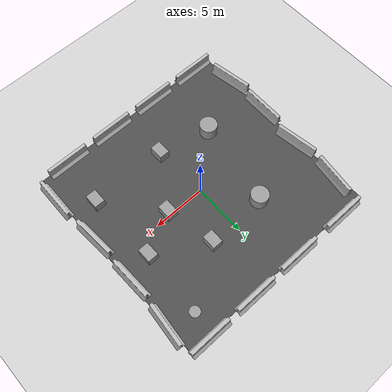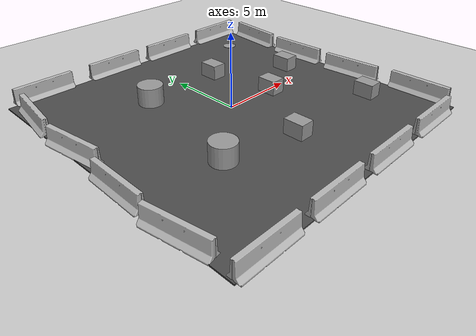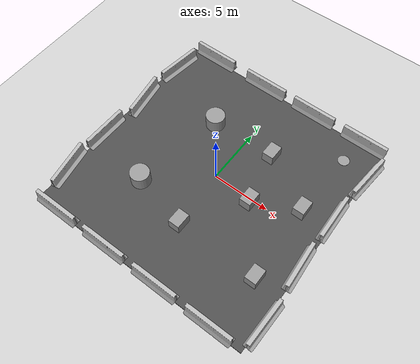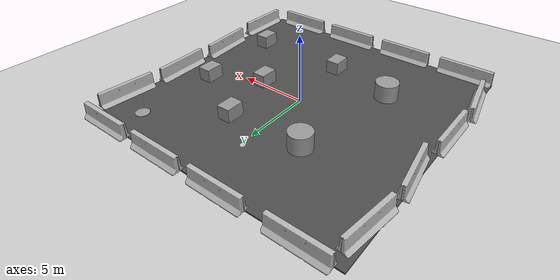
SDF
<sdf version="1.7">
 <world name="default">
  <light name="sun" type="directional">
   <pose>0 0 10 0 -0 0</pose>
   <diffuse>0.8 0.8 0.8 1</diffuse>
   <specular>0.2 0.2 0.2 1</specular>
   <attenuation>
    <range>1000</range>
    <constant>0.9</constant>
    <linear>0.01</linear>
    <quadratic>0.001</quadratic>
   </attenuation>
   <direction>-0.5 0.1 -0.9</direction>
   <spot><inner_angle>0</inner_angle><outer_angle>0</outer_angle><falloff>0</falloff></spot>
  </light>
  <model name="ground_plane">
   <static>1</static>
   <link name="link">
    <collision name="collision">
     <geometry><plane><normal>0 0 1</normal><size>100 100</size></plane></geometry>
     <surface><friction><ode><mu>100</mu><mu2>50</mu2></ode></friction></surface>
    </collision>
    <visual name="visual">
     <cast_shadows>0</cast_shadows>
     <geometry><plane><normal>0 0 1</normal><size>100 100</size></plane></geometry>
     <material>
      <script><uri>file://media/materials/scripts/gazebo.material</uri><name>Gazebo/Grey</name></script>
     </material>
    </visual>
    <velocity_decay><linear>0</linear><angular>0</angular></velocity_decay>
   </link>
  </model>
  <physics type="ode">
   <max_step_size>0.01</max_step_size>
   <real_time_factor>1</real_time_factor>
   <real_time_update_rate>100</real_time_update_rate>
  </physics>
  <scene><ambient>0.4 0.4 0.4 1</ambient><background>0.7 0.7 0.7 1</background><shadows>1</shadows></scene>
  <model name="jersey_barrier">
   <static>1</static>
   <link name="link">
    <visual name="visual">
     <geometry><mesh><uri>model://jersey_barrier/meshes/jersey_barrier.dae</uri></mesh></geometry>
    </visual>
    <collision name="upright">
     <pose>0 0 0.5715 0 -0 0</pose>
     <geometry><box><size>4.06542 0.3063 1.143</size></box></geometry>
    </collision>
    <collision name="base">
     <pose>0 0 0.032258 0 -0 0</pose>
     <geometry><box><size>4.06542 0.8107 0.064516</size></box></geometry>
    </collision>
    <collision name="base2">
     <pose>0 0 0.1 0 -0 0</pose>
     <geometry><box><size>4.06542 0.65 0.1</size></box></geometry>
    </collision>
    <collision name="base3">
     <pose>0 0 0.2 0 -0 0</pose>
     <geometry><box><size>4.06542 0.5 0.1</size></box></geometry>
    </collision>
    <collision name="left-angle">
     <pose>0 -0.224 0.2401 0.9 -0 0</pose>
     <geometry><box><size>4.06542 0.5 0.064516</size></box></geometry>
    </collision>
    <collision name="right-angle">
     <pose>0 0.224 0.2401 -0.9 0 0</pose>
     <geometry><box><size>4.06542 0.5 0.064516</size></box></geometry>
    </collision>
    <velocity_decay><linear>0</linear><angular>0</angular></velocity_decay>
   </link>
   <pose>-8 -10 0 0 -0 0</pose>
  </model>
  <model name="jersey_barrier_0">
   <static>1</static>
   <link name="link">
    <visual name="visual">
     <geometry><mesh><uri>model://jersey_barrier/meshes/jersey_barrier.dae</uri></mesh></geometry>
    </visual>
    <collision name="upright">
     <pose>0 0 0.5715 0 -0 0</pose>
     <geometry><box><size>4.06542 0.3063 1.143</size></box></geometry>
    </collision>
    <collision name="base">
     <pose>0 0 0.032258 0 -0 0</pose>
     <geometry><box><size>4.06542 0.8107 0.064516</size></box></geometry>
    </collision>
    <collision name="base2">
     <pose>0 0 0.1 0 -0 0</pose>
     <geometry><box><size>4.06542 0.65 0.1</size></box></geometry>
    </collision>
    <collision name="base3">
     <pose>0 0 0.2 0 -0 0</pose>
     <geometry><box><size>4.06542 0.5 0.1</size></box></geometry>
    </collision>
    <collision name="left-angle">
     <pose>0 -0.224 0.2401 0.9 -0 0</pose>
     <geometry><box><size>4.06542 0.5 0.064516</size></box></geometry>
    </collision>
    <collision name="right-angle">
     <pose>0 0.224 0.2401 -0.9 0 0</pose>
     <geometry><box><size>4.06542 0.5 0.064516</size></box></geometry>
    </collision>
    <velocity_decay><linear>0</linear><angular>0</angular></velocity_decay>
   </link>
   <pose>-3 -10 0 0 -0 0</pose>
  </model>
  <model name="jersey_barrier_1">
   <static>1</static>
   <link name="link">
    <visual name="visual">
     <geometry><mesh><uri>model://jersey_barrier/meshes/jersey_barrier.dae</uri></mesh></geometry>
    </visual>
    <collision name="upright">
     <pose>0 0 0.5715 0 -0 0</pose>
     <geometry><box><size>4.06542 0.3063 1.143</size></box></geometry>
    </collision>
    <collision name="base">
     <pose>0 0 0.032258 0 -0 0</pose>
     <geometry><box><size>4.06542 0.8107 0.064516</size></box></geometry>
    </collision>
    <collision name="base2">
     <pose>0 0 0.1 0 -0 0</pose>
     <geometry><box><size>4.06542 0.65 0.1</size></box></geometry>
    </collision>
    <collision name="base3">
     <pose>0 0 0.2 0 -0 0</pose>
     <geometry><box><size>4.06542 0.5 0.1</size></box></geometry>
    </collision>
    <collision name="left-angle">
     <pose>0 -0.224 0.2401 0.9 -0 0</pose>
     <geometry><box><size>4.06542 0.5 0.064516</size></box></geometry>
    </collision>
    <collision name="right-angle">
     <pose>0 0.224 0.2401 -0.9 0 0</pose>
     <geometry><box><size>4.06542 0.5 0.064516</size></box></geometry>
    </collision>
    <velocity_decay><linear>0</linear><angular>0</angular></velocity_decay>
   </link>
   <pose>2 -10 0 0 -0 0</pose>
  </model>
  <model name="jersey_barrier_2">
   <static>1</static>
   <link name="link">
    <visual name="visual">
     <geometry><mesh><uri>model://jersey_barrier/meshes/jersey_barrier.dae</uri></mesh></geometry>
    </visual>
    <collision name="upright">
     <pose>0 0 0.5715 0 -0 0</pose>
     <geometry><box><size>4.06542 0.3063 1.143</size></box></geometry>
    </collision>
    <collision name="base">
     <pose>0 0 0.032258 0 -0 0</pose>
     <geometry><box><size>4.06542 0.8107 0.064516</size></box></geometry>
    </collision>
    <collision name="base2">
     <pose>0 0 0.1 0 -0 0</pose>
     <geometry><box><size>4.06542 0.65 0.1</size></box></geometry>
    </collision>
    <collision name="base3">
     <pose>0 0 0.2 0 -0 0</pose>
     <geometry><box><size>4.06542 0.5 0.1</size></box></geometry>
    </collision>
    <collision name="left-angle">
     <pose>0 -0.224 0.2401 0.9 -0 0</pose>
     <geometry><box><size>4.06542 0.5 0.064516</size></box></geometry>
    </collision>
    <collision name="right-angle">
     <pose>0 0.224 0.2401 -0.9 0 0</pose>
     <geometry><box><size>4.06542 0.5 0.064516</size></box></geometry>
    </collision>
    <velocity_decay><linear>0</linear><angular>0</angular></velocity_decay>
   </link>
   <pose>7 -10 0 0 -0 0</pose>
  </model>
  <model name="jersey_barrier_3">
   <static>1</static>
   <link name="link">
    <visual name="visual">
     <geometry><mesh><uri>model://jersey_barrier/meshes/jersey_barrier.dae</uri></mesh></geometry>
    </visual>
    <collision name="upright">
     <pose>0 0 0.5715 0 -0 0</pose>
     <geometry><box><size>4.06542 0.3063 1.143</size></box></geometry>
    </collision>
    <collision name="base">
     <pose>0 0 0.032258 0 -0 0</pose>
     <geometry><box><size>4.06542 0.8107 0.064516</size></box></geometry>
    </collision>
    <collision name="base2">
     <pose>0 0 0.1 0 -0 0</pose>
     <geometry><box><size>4.06542 0.65 0.1</size></box></geometry>
    </collision>
    <collision name="base3">
     <pose>0 0 0.2 0 -0 0</pose>
     <geometry><box><size>4.06542 0.5 0.1</size></box></geometry>
    </collision>
    <collision name="left-angle">
     <pose>0 -0.224 0.2401 0.9 -0 0</pose>
     <geometry><box><size>4.06542 0.5 0.064516</size></box></geometry>
    </collision>
    <collision name="right-angle">
     <pose>0 0.224 0.2401 -0.9 0 0</pose>
     <geometry><box><size>4.06542 0.5 0.064516</size></box></geometry>
    </collision>
    <velocity_decay><linear>0</linear><angular>0</angular></velocity_decay>
   </link>
   <pose>-7.50675 10 0 0 -0 0</pose>
  </model>
  <model name="jersey_barrier_4">
   <static>1</static>
   <link name="link">
    <visual name="visual">
     <geometry><mesh><uri>model://jersey_barrier/meshes/jersey_barrier.dae</uri></mesh></geometry>
    </visual>
    <collision name="upright">
     <pose>0 0 0.5715 0 -0 0</pose>
     <geometry><box><size>4.06542 0.3063 1.143</size></box></geometry>
    </collision>
    <collision name="base">
     <pose>0 0 0.032258 0 -0 0</pose>
     <geometry><box><size>4.06542 0.8107 0.064516</size></box></geometry>
    </collision>
    <collision name="base2">
     <pose>0 0 0.1 0 -0 0</pose>
     <geometry><box><size>4.06542 0.65 0.1</size></box></geometry>
    </collision>
    <collision name="base3">
     <pose>0 0 0.2 0 -0 0</pose>
     <geometry><box><size>4.06542 0.5 0.1</size></box></geometry>
    </collision>
    <collision name="left-angle">
     <pose>0 -0.224 0.2401 0.9 -0 0</pose>
     <geometry><box><size>4.06542 0.5 0.064516</size></box></geometry>
    </collision>
    <collision name="right-angle">
     <pose>0 0.224 0.2401 -0.9 0 0</pose>
     <geometry><box><size>4.06542 0.5 0.064516</size></box></geometry>
    </collision>
    <velocity_decay><linear>0</linear><angular>0</angular></velocity_decay>
   </link>
   <pose>-2 10 0 0 -0 0</pose>
  </model>
  <model name="jersey_barrier_5">
   <static>1</static>
   <link name="link">
    <visual name="visual">
     <geometry><mesh><uri>model://jersey_barrier/meshes/jersey_barrier.dae</uri></mesh></geometry>
    </visual>
    <collision name="upright">
     <pose>0 0 0.5715 0 -0 0</pose>
     <geometry><box><size>4.06542 0.3063 1.143</size></box></geometry>
    </collision>
    <collision name="base">
     <pose>0 0 0.032258 0 -0 0</pose>
     <geometry><box><size>4.06542 0.8107 0.064516</size></box></geometry>
    </collision>
    <collision name="base2">
     <pose>0 0 0.1 0 -0 0</pose>
     <geometry><box><size>4.06542 0.65 0.1</size></box></geometry>
    </collision>
    <collision name="base3">
     <pose>0 0 0.2 0 -0 0</pose>
     <geometry><box><size>4.06542 0.5 0.1</size></box></geometry>
    </collision>
    <collision name="left-angle">
     <pose>0 -0.224 0.2401 0.9 -0 0</pose>
     <geometry><box><size>4.06542 0.5 0.064516</size></box></geometry>
    </collision>
    <collision name="right-angle">
     <pose>0 0.224 0.2401 -0.9 0 0</pose>
     <geometry><box><size>4.06542 0.5 0.064516</size></box></geometry>
    </collision>
    <velocity_decay><linear>0</linear><angular>0</angular></velocity_decay>
   </link>
   <pose>3 10 0 0 -0 0</pose>
  </model>
  <model name="jersey_barrier_6">
   <static>1</static>
   <link name="link">
    <visual name="visual">
     <geometry><mesh><uri>model://jersey_barrier/meshes/jersey_barrier.dae</uri></mesh></geometry>
    </visual>
    <collision name="upright">
     <pose>0 0 0.5715 0 -0 0</pose>
     <geometry><box><size>4.06542 0.3063 1.143</size></box></geometry>
    </collision>
    <collision name="base">
     <pose>0 0 0.032258 0 -0 0</pose>
     <geometry><box><size>4.06542 0.8107 0.064516</size></box></geometry>
    </collision>
    <collision name="base2">
     <pose>0 0 0.1 0 -0 0</pose>
     <geometry><box><size>4.06542 0.65 0.1</size></box></geometry>
    </collision>
    <collision name="base3">
     <pose>0 0 0.2 0 -0 0</pose>
     <geometry><box><size>4.06542 0.5 0.1</size></box></geometry>
    </collision>
    <collision name="left-angle">
     <pose>0 -0.224 0.2401 0.9 -0 0</pose>
     <geometry><box><size>4.06542 0.5 0.064516</size></box></geometry>
    </collision>
    <collision name="right-angle">
     <pose>0 0.224 0.2401 -0.9 0 0</pose>
     <geometry><box><size>4.06542 0.5 0.064516</size></box></geometry>
    </collision>
    <velocity_decay><linear>0</linear><angular>0</angular></velocity_decay>
   </link>
   <pose>8 10 0 0 -0 0</pose>
  </model>
  <model name="jersey_barrier_7">
   <static>1</static>
   <link name="link">
    <visual name="visual">
     <geometry><mesh><uri>model://jersey_barrier/meshes/jersey_barrier.dae</uri></mesh></geometry>
    </visual>
    <collision name="upright">
     <pose>0 0 0.5715 0 -0 0</pose>
     <geometry><box><size>4.06542 0.3063 1.143</size></box></geometry>
    </collision>
    <collision name="base">
     <pose>0 0 0.032258 0 -0 0</pose>
     <geometry><box><size>4.06542 0.8107 0.064516</size></box></geometry>
    </collision>
    <collision name="base2">
     <pose>0 0 0.1 0 -0 0</pose>
     <geometry><box><size>4.06542 0.65 0.1</size></box></geometry>
    </collision>
    <collision name="base3">
     <pose>0 0 0.2 0 -0 0</pose>
     <geometry><box><size>4.06542 0.5 0.1</size></box></geometry>
    </collision>
    <collision name="left-angle">
     <pose>0 -0.224 0.2401 0.9 -0 0</pose>
     <geometry><box><size>4.06542 0.5 0.064516</size></box></geometry>
    </collision>
    <collision name="right-angle">
     <pose>0 0.224 0.2401 -0.9 0 0</pose>
     <geometry><box><size>4.06542 0.5 0.064516</size></box></geometry>
    </collision>
    <velocity_decay><linear>0</linear><angular>0</angular></velocity_decay>
   </link>
   <pose>9.74902 -2.57759 0 0 -0 1.64</pose>
  </model>
  <model name="jersey_barrier_8">
   <static>1</static>
   <link name="link">
    <visual name="visual">
     <geometry><mesh><uri>model://jersey_barrier/meshes/jersey_barrier.dae</uri></mesh></geometry>
    </visual>
    <collision name="upright">
     <pose>0 0 0.5715 0 -0 0</pose>
     <geometry><box><size>4.06542 0.3063 1.143</size></box></geometry>
    </collision>
    <collision name="base">
     <pose>0 0 0.032258 0 -0 0</pose>
     <geometry><box><size>4.06542 0.8107 0.064516</size></box></geometry>
    </collision>
    <collision name="base2">
     <pose>0 0 0.1 0 -0 0</pose>
     <geometry><box><size>4.06542 0.65 0.1</size></box></geometry>
    </collision>
    <collision name="base3">
     <pose>0 0 0.2 0 -0 0</pose>
     <geometry><box><size>4.06542 0.5 0.1</size></box></geometry>
    </collision>
    <collision name="left-angle">
     <pose>0 -0.224 0.2401 0.9 -0 0</pose>
     <geometry><box><size>4.06542 0.5 0.064516</size></box></geometry>
    </collision>
    <collision name="right-angle">
     <pose>0 0.224 0.2401 -0.9 0 0</pose>
     <geometry><box><size>4.06542 0.5 0.064516</size></box></geometry>
    </collision>
    <velocity_decay><linear>0</linear><angular>0</angular></velocity_decay>
   </link>
   <pose>9.70141 2.24369 0 0 -0 1.6</pose>
  </model>
  <model name="jersey_barrier_9">
   <static>1</static>
   <link name="link">
    <visual name="visual">
     <geometry><mesh><uri>model://jersey_barrier/meshes/jersey_barrier.dae</uri></mesh></geometry>
    </visual>
    <collision name="upright">
     <pose>0 0 0.5715 0 -0 0</pose>
     <geometry><box><size>4.06542 0.3063 1.143</size></box></geometry>
    </collision>
    <collision name="base">
     <pose>0 0 0.032258 0 -0 0</pose>
     <geometry><box><size>4.06542 0.8107 0.064516</size></box></geometry>
    </collision>
    <collision name="base2">
     <pose>0 0 0.1 0 -0 0</pose>
     <geometry><box><size>4.06542 0.65 0.1</size></box></geometry>
    </collision>
    <collision name="base3">
     <pose>0 0 0.2 0 -0 0</pose>
     <geometry><box><size>4.06542 0.5 0.1</size></box></geometry>
    </collision>
    <collision name="left-angle">
     <pose>0 -0.224 0.2401 0.9 -0 0</pose>
     <geometry><box><size>4.06542 0.5 0.064516</size></box></geometry>
    </collision>
    <collision name="right-angle">
     <pose>0 0.224 0.2401 -0.9 0 0</pose>
     <geometry><box><size>4.06542 0.5 0.064516</size></box></geometry>
    </collision>
    <velocity_decay><linear>0</linear><angular>0</angular></velocity_decay>
   </link>
   <pose>-10.0607 -6.69856 0 0 0 -1.4</pose>
  </model>
  <model name="jersey_barrier_10">
   <static>1</static>
   <link name="link">
    <visual name="visual">
     <geometry><mesh><uri>model://jersey_barrier/meshes/jersey_barrier.dae</uri></mesh></geometry>
    </visual>
    <collision name="upright">
     <pose>0 0 0.5715 0 -0 0</pose>
     <geometry><box><size>4.06542 0.3063 1.143</size></box></geometry>
    </collision>
    <collision name="base">
     <pose>0 0 0.032258 0 -0 0</pose>
     <geometry><box><size>4.06542 0.8107 0.064516</size></box></geometry>
    </collision>
    <collision name="base2">
     <pose>0 0 0.1 0 -0 0</pose>
     <geometry><box><size>4.06542 0.65 0.1</size></box></geometry>
    </collision>
    <collision name="base3">
     <pose>0 0 0.2 0 -0 0</pose>
     <geometry><box><size>4.06542 0.5 0.1</size></box></geometry>
    </collision>
    <collision name="left-angle">
     <pose>0 -0.224 0.2401 0.9 -0 0</pose>
     <geometry><box><size>4.06542 0.5 0.064516</size></box></geometry>
    </collision>
    <collision name="right-angle">
     <pose>0 0.224 0.2401 -0.9 0 0</pose>
     <geometry><box><size>4.06542 0.5 0.064516</size></box></geometry>
    </collision>
    <velocity_decay><linear>0</linear><angular>0</angular></velocity_decay>
   </link>
   <pose>-10.0774 -2.27159 0 0 -0 1.56</pose>
  </model>
  <model name="jersey_barrier_11">
   <static>1</static>
   <link name="link">
    <visual name="visual">
     <geometry><mesh><uri>model://jersey_barrier/meshes/jersey_barrier.dae</uri></mesh></geometry>
    </visual>
    <collision name="upright">
     <pose>0 0 0.5715 0 -0 0</pose>
     <geometry><box><size>4.06542 0.3063 1.143</size></box></geometry>
    </collision>
    <collision name="base">
     <pose>0 0 0.032258 0 -0 0</pose>
     <geometry><box><size>4.06542 0.8107 0.064516</size></box></geometry>
    </collision>
    <collision name="base2">
     <pose>0 0 0.1 0 -0 0</pose>
     <geometry><box><size>4.06542 0.65 0.1</size></box></geometry>
    </collision>
    <collision name="base3">
     <pose>0 0 0.2 0 -0 0</pose>
     <geometry><box><size>4.06542 0.5 0.1</size></box></geometry>
    </collision>
    <collision name="left-angle">
     <pose>0 -0.224 0.2401 0.9 -0 0</pose>
     <geometry><box><size>4.06542 0.5 0.064516</size></box></geometry>
    </collision>
    <collision name="right-angle">
     <pose>0 0.224 0.2401 -0.9 0 0</pose>
     <geometry><box><size>4.06542 0.5 0.064516</size></box></geometry>
    </collision>
    <velocity_decay><linear>0</linear><angular>0</angular></velocity_decay>
   </link>
   <pose>-9.77013 2.34791 0 0 -0 1.72</pose>
  </model>
  <model name="jersey_barrier_12">
   <static>1</static>
   <link name="link">
    <visual name="visual">
     <geometry><mesh><uri>model://jersey_barrier/meshes/jersey_barrier.dae</uri></mesh></geometry>
    </visual>
    <collision name="upright">
     <pose>0 0 0.5715 0 -0 0</pose>
     <geometry><box><size>4.06542 0.3063 1.143</size></box></geometry>
    </collision>
    <collision name="base">
     <pose>0 0 0.032258 0 -0 0</pose>
     <geometry><box><size>4.06542 0.8107 0.064516</size></box></geometry>
    </collision>
    <collision name="base2">
     <pose>0 0 0.1 0 -0 0</pose>
     <geometry><box><size>4.06542 0.65 0.1</size></box></geometry>
    </collision>
    <collision name="base3">
     <pose>0 0 0.2 0 -0 0</pose>
     <geometry><box><size>4.06542 0.5 0.1</size></box></geometry>
    </collision>
    <collision name="left-angle">
     <pose>0 -0.224 0.2401 0.9 -0 0</pose>
     <geometry><box><size>4.06542 0.5 0.064516</size></box></geometry>
    </collision>
    <collision name="right-angle">
     <pose>0 0.224 0.2401 -0.9 0 0</pose>
     <geometry><box><size>4.06542 0.5 0.064516</size></box></geometry>
    </collision>
    <velocity_decay><linear>0</linear><angular>0</angular></velocity_decay>
   </link>
   <pose>10.0879 -7.62159 0 0 -0 1.56</pose>
  </model>
  <model name="jersey_barrier_13">
   <static>1</static>
   <link name="link">
    <visual name="visual">
     <geometry><mesh><uri>model://jersey_barrier/meshes/jersey_barrier.dae</uri></mesh></geometry>
    </visual>
    <collision name="upright">
     <pose>0 0 0.5715 0 -0 0</pose>
     <geometry><box><size>4.06542 0.3063 1.143</size></box></geometry>
    </collision>
    <collision name="base">
     <pose>0 0 0.032258 0 -0 0</pose>
     <geometry><box><size>4.06542 0.8107 0.064516</size></box></geometry>
    </collision>
    <collision name="base2">
     <pose>0 0 0.1 0 -0 0</pose>
     <geometry><box><size>4.06542 0.65 0.1</size></box></geometry>
    </collision>
    <collision name="base3">
     <pose>0 0 0.2 0 -0 0</pose>
     <geometry><box><size>4.06542 0.5 0.1</size></box></geometry>
    </collision>
    <collision name="left-angle">
     <pose>0 -0.224 0.2401 0.9 -0 0</pose>
     <geometry><box><size>4.06542 0.5 0.064516</size></box></geometry>
    </collision>
    <collision name="right-angle">
     <pose>0 0.224 0.2401 -0.9 0 0</pose>
     <geometry><box><size>4.06542 0.5 0.064516</size></box></geometry>
    </collision>
    <velocity_decay><linear>0</linear><angular>0</angular></velocity_decay>
   </link>
   <pose>10 7 0 0 -0 1.48</pose>
  </model>
  <model name="jersey_barrier_14">
   <static>1</static>
   <link name="link">
    <visual name="visual">
     <geometry><mesh><uri>model://jersey_barrier/meshes/jersey_barrier.dae</uri></mesh></geometry>
    </visual>
    <collision name="upright">
     <pose>0 0 0.5715 0 -0 0</pose>
     <geometry><box><size>4.06542 0.3063 1.143</size></box></geometry>
    </collision>
    <collision name="base">
     <pose>0 0 0.032258 0 -0 0</pose>
     <geometry><box><size>4.06542 0.8107 0.064516</size></box></geometry>
    </collision>
    <collision name="base2">
     <pose>0 0 0.1 0 -0 0</pose>
     <geometry><box><size>4.06542 0.65 0.1</size></box></geometry>
    </collision>
    <collision name="base3">
     <pose>0 0 0.2 0 -0 0</pose>
     <geometry><box><size>4.06542 0.5 0.1</size></box></geometry>
    </collision>
    <collision name="left-angle">
     <pose>0 -0.224 0.2401 0.9 -0 0</pose>
     <geometry><box><size>4.06542 0.5 0.064516</size></box></geometry>
    </collision>
    <collision name="right-angle">
     <pose>0 0.224 0.2401 -0.9 0 0</pose>
     <geometry><box><size>4.06542 0.5 0.064516</size></box></geometry>
    </collision>
    <velocity_decay><linear>0</linear><angular>0</angular></velocity_decay>
   </link>
   <pose>-9.64482 7.05946 0 0 -0 1.44</pose>
  </model>
  <model name="asphalt_plane">
   <static>1</static>
   <link name="link">
    <collision name="collision"><geometry><box><size>20 20 0.1</size></box></geometry></collision>
    <visual name="visual">
     <cast_shadows>0</cast_shadows>
     <geometry><box><size>20 20 0.1</size></box></geometry>
     <material>
      <script>
       <uri>model://asphalt_plane/materials/scripts</uri>
       <uri>model://asphalt_plane/materials/textures</uri>
       <name>vrc/asphalt</name>
      </script>
     </material>
    </visual>
    <velocity_decay><linear>0</linear><angular>0</angular></velocity_decay>
   </link>
   <pose>-0.091219 -0.151389 0 0 -0 0</pose>
  </model>
  <gravity>0 0 -9.8</gravity>
  <magnetic_field>6e-06 2.3e-05 -4.2e-05</magnetic_field>
  <atmosphere type="adiabatic"/>
  <spherical_coordinates>
   <surface_model>EARTH_WGS84</surface_model>
   <latitude_deg>0</latitude_deg>
   <longitude_deg>0</longitude_deg>
   <elevation>0</elevation>
   <heading_deg>0</heading_deg>
  </spherical_coordinates>
  <model name="unit_cylinder_clone">
   <pose>7.50271 7.63227 0.060636 -0.000973 -0.000167 -0.014567</pose>
   <link name="link">
    <inertial>
     <mass>1</mass>
     <inertia><ixx>0.145833</ixx><ixy>0</ixy><ixz>0</ixz><iyy>0.145833</iyy><iyz>0</iyz><izz>0.125</izz></inertia>
    </inertial>
    <collision name="collision">
     <geometry><cylinder><radius>0.5</radius><length>0.0202856</length></cylinder></geometry>
    </collision>
    <visual name="visual">
     <geometry><cylinder><radius>0.5</radius><length>0.0202856</length></cylinder></geometry>
     <material>
      <script><name>Gazebo/Grey</name><uri>file://media/materials/scripts/gazebo.material</uri></script>
     </material>
    </visual>
   </link>
  </model>
  <model name="box_static_clone">
   <link name="link">
    <inertial>
     <mass>1</mass>
     <inertia>
      <ixx>0.166667</ixx>
      <ixy>0</ixy>
      <ixz>0</ixz>
      <iyy>0.166667</iyy>
      <iyz>0</iyz>
      <izz>0.166667</izz>
     </inertia>
    </inertial>
    <visual name="visual">
     <geometry><box><size>1 1.33759 1</size></box></geometry>
     <material>
      <script><name>Gazebo/Grey</name><uri>file://media/materials/scripts/gazebo.material</uri></script>
      <shader type="pixel"/>
     </material>
    </visual>
    <collision name="collision">
     <geometry><box><size>1 1.33759 1</size></box></geometry>
     <surface>
      <friction>
       <ode><mu>1</mu><mu2>1</mu2><fdir1>0 0 0</fdir1><slip1>0</slip1><slip2>0</slip2></ode>
       <torsional>
        <coefficient>1</coefficient>
        <patch_radius>0</patch_radius>
        <surface_radius>0</surface_radius>
        <use_patch_radius>1</use_patch_radius>
        <ode><slip>0</slip></ode>
       </torsional>
      </friction>
      <bounce><restitution_coefficient>0</restitution_coefficient><threshold>1e+06</threshold></bounce>
      <contact>
       <collide_without_contact>0</collide_without_contact>
       <collide_without_contact_bitmask>1</collide_without_contact_bitmask>
       <collide_bitmask>1</collide_bitmask>
       <ode>
        <soft_cfm>0</soft_cfm>
        <soft_erp>0.2</soft_erp>
        <kp>1e+13</kp>
        <kd>1</kd>
        <max_vel>0.01</max_vel>
        <min_depth>0</min_depth>
       </ode>
       <bullet>
        <split_impulse>1</split_impulse>
        <split_impulse_penetration_threshold>-0.01</split_impulse_penetration_threshold>
        <soft_cfm>0</soft_cfm>
        <soft_erp>0.2</soft_erp>
        <kp>1e+13</kp>
        <kd>1</kd>
       </bullet>
      </contact>
     </surface>
    </collision>
   </link>
   <static>1</static>
   <pose>0.303039 -5.08873 0.55 0 0 -1.8e-05</pose>
  </model>
  <model name="box_static_clone_1">
   <link name="link">
    <inertial>
     <mass>1</mass>
     <inertia>
      <ixx>0.166667</ixx>
      <ixy>0</ixy>
      <ixz>0</ixz>
      <iyy>0.166667</iyy>
      <iyz>0</iyz>
      <izz>0.166667</izz>
     </inertia>
    </inertial>
    <visual name="visual">
     <geometry><box><size>1 1.33759 1</size></box></geometry>
     <material>
      <script><name>Gazebo/Grey</name><uri>file://media/materials/scripts/gazebo.material</uri></script>
      <shader type="pixel"/>
     </material>
    </visual>
    <collision name="collision">
     <geometry><box><size>1 1.33759 1</size></box></geometry>
     <surface>
      <friction>
       <ode><mu>1</mu><mu2>1</mu2><fdir1>0 0 0</fdir1><slip1>0</slip1><slip2>0</slip2></ode>
       <torsional>
        <coefficient>1</coefficient>
        <patch_radius>0</patch_radius>
        <surface_radius>0</surface_radius>
        <use_patch_radius>1</use_patch_radius>
        <ode><slip>0</slip></ode>
       </torsional>
      </friction>
      <bounce><restitution_coefficient>0</restitution_coefficient><threshold>1e+06</threshold></bounce>
      <contact>
       <collide_without_contact>0</collide_without_contact>
       <collide_without_contact_bitmask>1</collide_without_contact_bitmask>
       <collide_bitmask>1</collide_bitmask>
       <ode>
        <soft_cfm>0</soft_cfm>
        <soft_erp>0.2</soft_erp>
        <kp>1e+13</kp>
        <kd>1</kd>
        <max_vel>0.01</max_vel>
        <min_depth>0</min_depth>
       </ode>
       <bullet>
        <split_impulse>1</split_impulse>
        <split_impulse_penetration_threshold>-0.01</split_impulse_penetration_threshold>
        <soft_cfm>0</soft_cfm>
        <soft_erp>0.2</soft_erp>
        <kp>1e+13</kp>
        <kd>1</kd>
       </bullet>
      </contact>
     </surface>
    </collision>
   </link>
   <static>1</static>
   <pose>2.49648 4.30435 0.55 0 0 -1.8e-05</pose>
  </model>
  <model name="box_static_clone_2">
   <link name="link">
    <inertial>
     <mass>1</mass>
     <inertia>
      <ixx>0.166667</ixx>
      <ixy>0</ixy>
      <ixz>0</ixz>
      <iyy>0.166667</iyy>
      <iyz>0</iyz>
      <izz>0.166667</izz>
     </inertia>
    </inertial>
    <visual name="visual">
     <geometry><box><size>1 1.33759 1</size></box></geometry>
     <material>
      <script><name>Gazebo/Grey</name><uri>file://media/materials/scripts/gazebo.material</uri></script>
      <shader type="pixel"/>
     </material>
    </visual>
    <collision name="collision">
     <geometry><box><size>1 1.33759 1</size></box></geometry>
     <surface>
      <friction>
       <ode><mu>1</mu><mu2>1</mu2><fdir1>0 0 0</fdir1><slip1>0</slip1><slip2>0</slip2></ode>
       <torsional>
        <coefficient>1</coefficient>
        <patch_radius>0</patch_radius>
        <surface_radius>0</surface_radius>
        <use_patch_radius>1</use_patch_radius>
        <ode><slip>0</slip></ode>
       </torsional>
      </friction>
      <bounce><restitution_coefficient>0</restitution_coefficient><threshold>1e+06</threshold></bounce>
      <contact>
       <collide_without_contact>0</collide_without_contact>
       <collide_without_contact_bitmask>1</collide_without_contact_bitmask>
       <collide_bitmask>1</collide_bitmask>
       <ode>
        <soft_cfm>0</soft_cfm>
        <soft_erp>0.2</soft_erp>
        <kp>1e+13</kp>
        <kd>1</kd>
        <max_vel>0.01</max_vel>
        <min_depth>0</min_depth>
       </ode>
       <bullet>
        <split_impulse>1</split_impulse>
        <split_impulse_penetration_threshold>-0.01</split_impulse_penetration_threshold>
        <soft_cfm>0</soft_cfm>
        <soft_erp>0.2</soft_erp>
        <kp>1e+13</kp>
        <kd>1</kd>
       </bullet>
      </contact>
     </surface>
    </collision>
   </link>
   <static>1</static>
   <pose>3.5093 -0.284321 0.55 0 0 -1.8e-05</pose>
  </model>
  <model name="box_static_clone_3">
   <link name="link">
    <inertial>
     <mass>1</mass>
     <inertia>
      <ixx>0.166667</ixx>
      <ixy>0</ixy>
      <ixz>0</ixz>
      <iyy>0.166667</iyy>
      <iyz>0</iyz>
      <izz>0.166667</izz>
     </inertia>
    </inertial>
    <visual name="visual">
     <geometry><box><size>1 1.33759 1</size></box></geometry>
     <material>
      <script><name>Gazebo/Grey</name><uri>file://media/materials/scripts/gazebo.material</uri></script>
      <shader type="pixel"/>
     </material>
    </visual>
    <collision name="collision">
     <geometry><box><size>1 1.33759 1</size></box></geometry>
     <surface>
      <friction>
       <ode><mu>1</mu><mu2>1</mu2><fdir1>0 0 0</fdir1><slip1>0</slip1><slip2>0</slip2></ode>
       <torsional>
        <coefficient>1</coefficient>
        <patch_radius>0</patch_radius>
        <surface_radius>0</surface_radius>
        <use_patch_radius>1</use_patch_radius>
        <ode><slip>0</slip></ode>
       </torsional>
      </friction>
      <bounce><restitution_coefficient>0</restitution_coefficient><threshold>1e+06</threshold></bounce>
      <contact>
       <collide_without_contact>0</collide_without_contact>
       <collide_without_contact_bitmask>1</collide_without_contact_bitmask>
       <collide_bitmask>1</collide_bitmask>
       <ode>
        <soft_cfm>0</soft_cfm>
        <soft_erp>0.2</soft_erp>
        <kp>1e+13</kp>
        <kd>1</kd>
        <max_vel>0.01</max_vel>
        <min_depth>0</min_depth>
       </ode>
       <bullet>
        <split_impulse>1</split_impulse>
        <split_impulse_penetration_threshold>-0.01</split_impulse_penetration_threshold>
        <soft_cfm>0</soft_cfm>
        <soft_erp>0.2</soft_erp>
        <kp>1e+13</kp>
        <kd>1</kd>
       </bullet>
      </contact>
     </surface>
    </collision>
   </link>
   <static>1</static>
   <pose>7.53276 -5.1957 0.55 0 0 -1.8e-05</pose>
  </model>
  <model name="box_static_clone_4">
   <link name="link">
    <inertial>
     <mass>1</mass>
     <inertia>
      <ixx>0.166667</ixx>
      <ixy>0</ixy>
      <ixz>0</ixz>
      <iyy>0.166667</iyy>
      <iyz>0</iyz>
      <izz>0.166667</izz>
     </inertia>
    </inertial>
    <visual name="visual">
     <geometry><box><size>1 1.33759 1</size></box></geometry>
     <material>
      <script><name>Gazebo/Grey</name><uri>file://media/materials/scripts/gazebo.material</uri></script>
      <shader type="pixel"/>
     </material>
    </visual>
    <collision name="collision">
     <geometry><box><size>1 1.33759 1</size></box></geometry>
     <surface>
      <friction>
       <ode><mu>1</mu><mu2>1</mu2><fdir1>0 0 0</fdir1><slip1>0</slip1><slip2>0</slip2></ode>
       <torsional>
        <coefficient>1</coefficient>
        <patch_radius>0</patch_radius>
        <surface_radius>0</surface_radius>
        <use_patch_radius>1</use_patch_radius>
        <ode><slip>0</slip></ode>
       </torsional>
      </friction>
      <bounce><restitution_coefficient>0</restitution_coefficient><threshold>1e+06</threshold></bounce>
      <contact>
       <collide_without_contact>0</collide_without_contact>
       <collide_without_contact_bitmask>1</collide_without_contact_bitmask>
       <collide_bitmask>1</collide_bitmask>
       <ode>
        <soft_cfm>0</soft_cfm>
        <soft_erp>0.2</soft_erp>
        <kp>1e+13</kp>
        <kd>1</kd>
        <max_vel>0.01</max_vel>
        <min_depth>0</min_depth>
       </ode>
       <bullet>
        <split_impulse>1</split_impulse>
        <split_impulse_penetration_threshold>-0.01</split_impulse_penetration_threshold>
        <soft_cfm>0</soft_cfm>
        <soft_erp>0.2</soft_erp>
        <kp>1e+13</kp>
        <kd>1</kd>
       </bullet>
      </contact>
     </surface>
    </collision>
   </link>
   <static>1</static>
   <pose>7.23912 1.56936 0.55 0 0 -1.8e-05</pose>
  </model>
  <model name="unit_cylinder">
   <link name="link">
    <inertial>
     <mass>1</mass>
     <inertia><ixx>0.145833</ixx><ixy>0</ixy><ixz>0</ixz><iyy>0.145833</iyy><iyz>0</iyz><izz>0.125</izz></inertia>
    </inertial>
    <visual name="visual">
     <geometry><cylinder><radius>0.83186</radius><length>1.66372</length></cylinder></geometry>
     <material>
      <script><name>Gazebo/Grey</name><uri>file://media/materials/scripts/gazebo.material</uri></script>
      <shader type="pixel"/>
     </material>
    </visual>
    <collision name="collision">
     <geometry><cylinder><radius>0.83186</radius><length>1.66372</length></cylinder></geometry>
     <surface>
      <friction>
       <ode><mu>1</mu><mu2>1</mu2><fdir1>0 0 0</fdir1><slip1>0</slip1><slip2>0</slip2></ode>
       <torsional>
        <coefficient>1</coefficient>
        <patch_radius>0</patch_radius>
        <surface_radius>0</surface_radius>
        <use_patch_radius>1</use_patch_radius>
        <ode><slip>0</slip></ode>
       </torsional>
      </friction>
      <bounce><restitution_coefficient>0</restitution_coefficient><threshold>1e+06</threshold></bounce>
      <contact>
       <collide_without_contact>0</collide_without_contact>
       <collide_without_contact_bitmask>1</collide_without_contact_bitmask>
       <collide_bitmask>1</collide_bitmask>
       <ode>
        <soft_cfm>0</soft_cfm>
        <soft_erp>0.2</soft_erp>
        <kp>1e+13</kp>
        <kd>1</kd>
        <max_vel>0.01</max_vel>
        <min_depth>0</min_depth>
       </ode>
       <bullet>
        <split_impulse>1</split_impulse>
        <split_impulse_penetration_threshold>-0.01</split_impulse_penetration_threshold>
        <soft_cfm>0</soft_cfm>
        <soft_erp>0.2</soft_erp>
        <kp>1e+13</kp>
        <kd>1</kd>
       </bullet>
      </contact>
     </surface>
    </collision>
   </link>
   <static>1</static>
   <pose>-4.60951 -3.97645 0.5 0 -0 0</pose>
  </model>
  <model name="unit_cylinder_clone_0">
   <link name="link">
    <inertial>
     <mass>1</mass>
     <inertia><ixx>0.145833</ixx><ixy>0</ixy><ixz>0</ixz><iyy>0.145833</iyy><iyz>0</iyz><izz>0.125</izz></inertia>
    </inertial>
    <visual name="visual">
     <geometry><cylinder><radius>0.83186</radius><length>1.66372</length></cylinder></geometry>
     <material>
      <script><name>Gazebo/Grey</name><uri>file://media/materials/scripts/gazebo.material</uri></script>
      <shader type="pixel"/>
     </material>
    </visual>
    <collision name="collision">
     <geometry><cylinder><radius>0.83186</radius><length>1.66372</length></cylinder></geometry>
     <surface>
      <friction>
       <ode><mu>1</mu><mu2>1</mu2><fdir1>0 0 0</fdir1><slip1>0</slip1><slip2>0</slip2></ode>
       <torsional>
        <coefficient>1</coefficient>
        <patch_radius>0</patch_radius>
        <surface_radius>0</surface_radius>
        <use_patch_radius>1</use_patch_radius>
        <ode><slip>0</slip></ode>
       </torsional>
      </friction>
      <bounce><restitution_coefficient>0</restitution_coefficient><threshold>1e+06</threshold></bounce>
      <contact>
       <collide_without_contact>0</collide_without_contact>
       <collide_without_contact_bitmask>1</collide_without_contact_bitmask>
       <collide_bitmask>1</collide_bitmask>
       <ode>
        <soft_cfm>0</soft_cfm>
        <soft_erp>0.2</soft_erp>
        <kp>1e+13</kp>
        <kd>1</kd>
        <max_vel>0.01</max_vel>
        <min_depth>0</min_depth>
       </ode>
       <bullet>
        <split_impulse>1</split_impulse>
        <split_impulse_penetration_threshold>-0.01</split_impulse_penetration_threshold>
        <soft_cfm>0</soft_cfm>
        <soft_erp>0.2</soft_erp>
        <kp>1e+13</kp>
        <kd>1</kd>
       </bullet>
      </contact>
     </surface>
    </collision>
   </link>
   <static>1</static>
   <pose>-3.20305 4.12057 0.5 0 -0 0</pose>
  </model>
 </world>
</sdf>
